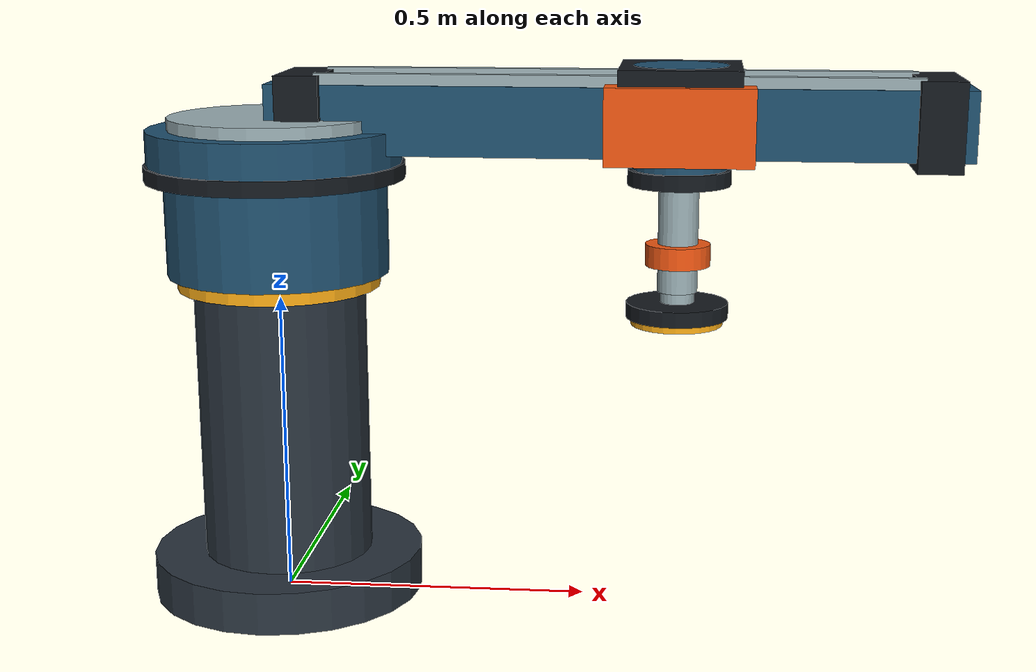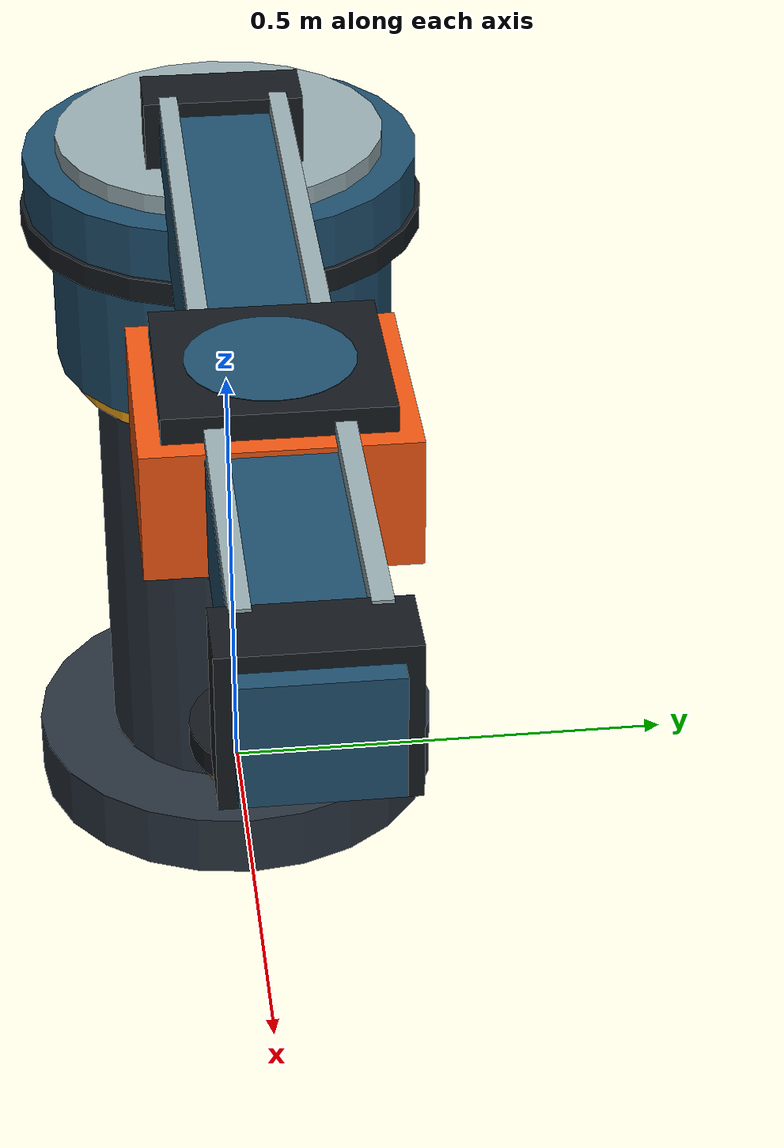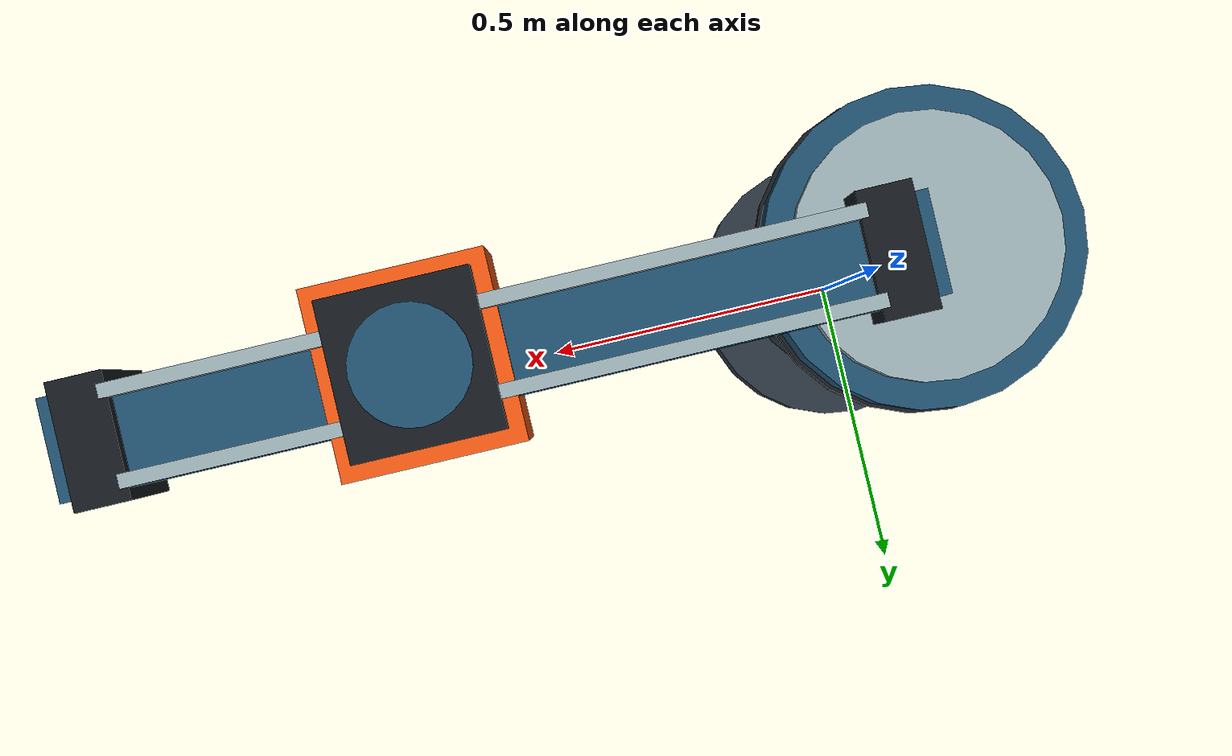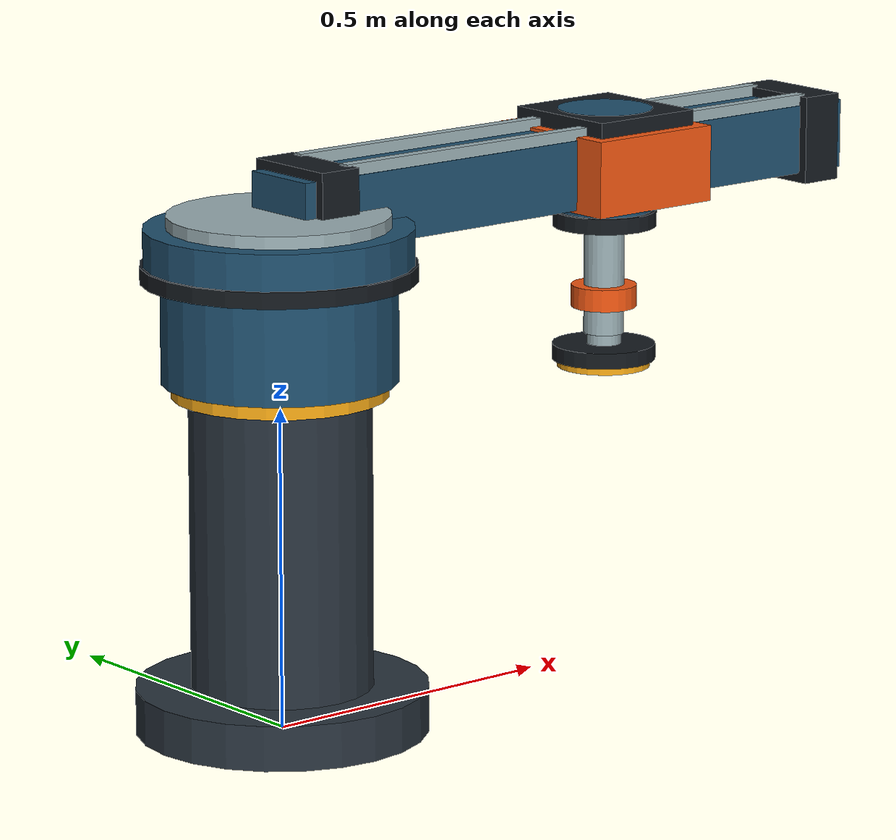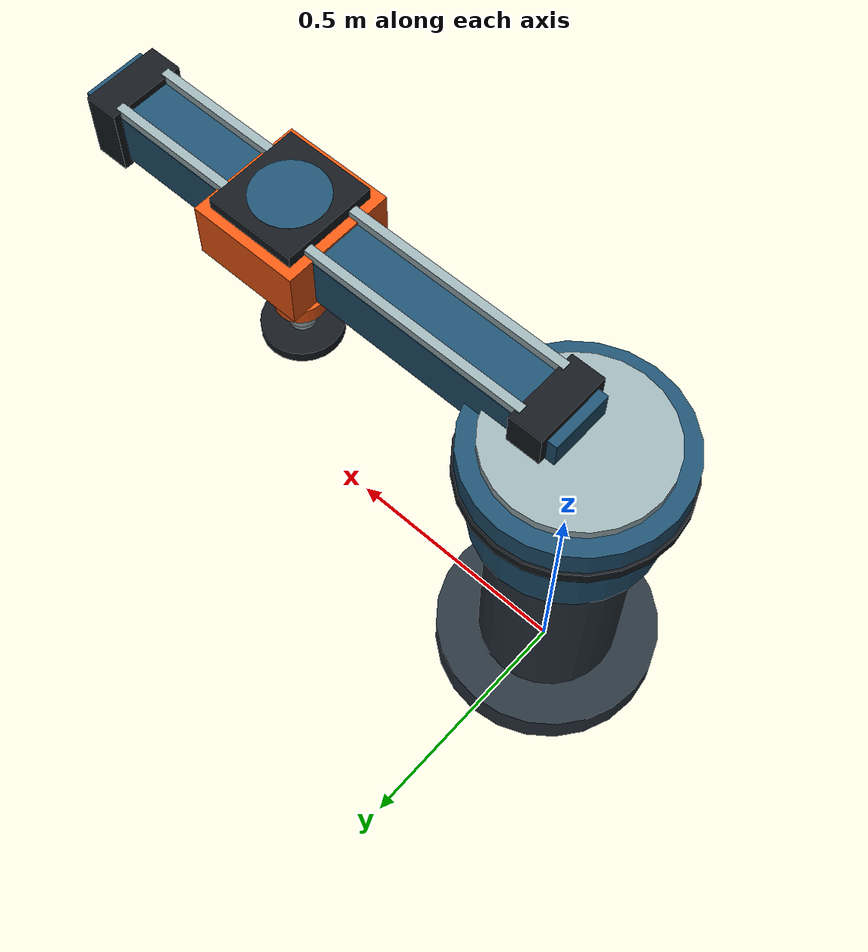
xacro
<?xml version="1.0"?>
<robot xmlns:xacro="http://www.ros.org/wiki/xacro" name="stoneware_manipulator">
  <xacro:arg
    name="controllers_file"
    default="$(find stoneware_manipulation_test)/config/controllers.yaml"/>
  <xacro:property name="base_height" value="0.70"/>
  <xacro:property name="rail_height" value="0.10"/>
  <xacro:property name="radial_offset" value="0.65"/>
  <xacro:property name="tool_offset" value="0.305"/>

  <material name="base_gray">
    <color rgba="0.16 0.20 0.24 1"/>
  </material>
  <material name="rail_blue">
    <color rgba="0.12 0.31 0.43 1"/>
  </material>
  <material name="carriage_orange">
    <color rgba="0.94 0.34 0.07 1"/>
  </material>
  <material name="tool_black">
    <color rgba="0.08 0.10 0.12 1"/>
  </material>
  <material name="machined_steel">
    <color rgba="0.60 0.68 0.70 1"/>
  </material>
  <material name="safety_yellow">
    <color rgba="0.96 0.66 0.08 1"/>
  </material>

  <link name="world"/>

  <link name="base_link">
    <inertial>
      <origin xyz="0 0 ${base_height / 2}" rpy="0 0 0"/>
      <mass value="12.0"/>
      <inertia
        ixx="${12.0 * (3 * 0.16 ** 2 + base_height ** 2) / 12}"
        ixy="0"
        ixz="0"
        iyy="${12.0 * (3 * 0.16 ** 2 + base_height ** 2) / 12}"
        iyz="0"
        izz="${12.0 * 0.16 ** 2 / 2}"/>
    </inertial>
    <visual name="mounting_foot">
      <origin xyz="0 0 0.035" rpy="0 0 0"/>
      <geometry>
        <cylinder radius="0.225" length="0.07"/>
      </geometry>
      <material name="base_gray"/>
    </visual>
    <visual name="pedestal_shell">
      <origin xyz="0 0 0.30" rpy="0 0 0"/>
      <geometry>
        <cylinder radius="0.14" length="0.48"/>
      </geometry>
      <material name="base_gray"/>
    </visual>
    <visual name="pedestal_trim">
      <origin xyz="0 0 0.54" rpy="0 0 0"/>
      <geometry>
        <cylinder radius="0.165" length="0.035"/>
      </geometry>
      <material name="safety_yellow"/>
    </visual>
    <visual name="shoulder_support">
      <origin xyz="0 0 0.62" rpy="0 0 0"/>
      <geometry>
        <cylinder radius="0.18" length="0.15"/>
      </geometry>
      <material name="rail_blue"/>
    </visual>
    <collision>
      <origin xyz="0 0 ${base_height / 2}" rpy="0 0 0"/>
      <geometry>
        <cylinder radius="0.16" length="${base_height}"/>
      </geometry>
    </collision>
  </link>

  <link name="turntable_link">
    <inertial>
      <origin xyz="0 0 0.04" rpy="0 0 0"/>
      <mass value="3.0"/>
      <inertia ixx="0.0324" ixy="0" ixz="0" iyy="0.0324" iyz="0" izz="0.0600"/>
    </inertial>
    <visual name="yaw_housing">
      <origin xyz="0 0 0.04" rpy="0 0 0"/>
      <geometry>
        <cylinder radius="0.205" length="0.08"/>
      </geometry>
      <material name="rail_blue"/>
    </visual>
    <visual name="yaw_joint_band">
      <origin xyz="0 0 0.012" rpy="0 0 0"/>
      <geometry>
        <cylinder radius="0.21" length="0.025"/>
      </geometry>
      <material name="tool_black"/>
    </visual>
    <visual name="yaw_cap">
      <origin xyz="0 0 0.087" rpy="0 0 0"/>
      <geometry>
        <cylinder radius="0.17" length="0.025"/>
      </geometry>
      <material name="machined_steel"/>
    </visual>
    <collision>
      <origin xyz="0 0 0.04" rpy="0 0 0"/>
      <geometry>
        <cylinder radius="0.20" length="0.08"/>
      </geometry>
    </collision>
  </link>

  <link name="rail_link">
    <inertial>
      <origin xyz="0.55 0 0" rpy="0 0 0"/>
      <mass value="1.5"/>
      <inertia
        ixx="0.001225"
        ixy="0"
        ixz="0"
        iyy="0.1518625"
        iyz="0"
        izz="0.1518625"/>
    </inertial>
    <visual name="radial_beam">
      <origin xyz="0.55 0 0" rpy="0 0 0"/>
      <geometry>
        <box size="1.10 0.13 0.11"/>
      </geometry>
      <material name="rail_blue"/>
    </visual>
    <visual name="guide_rail_left">
      <origin xyz="0.55 0.055 0.064" rpy="0 0 0"/>
      <geometry>
        <box size="0.94 0.018 0.018"/>
      </geometry>
      <material name="machined_steel"/>
    </visual>
    <visual name="guide_rail_right">
      <origin xyz="0.55 -0.055 0.064" rpy="0 0 0"/>
      <geometry>
        <box size="0.94 0.018 0.018"/>
      </geometry>
      <material name="machined_steel"/>
    </visual>
    <visual name="rail_end_stop_near">
      <origin xyz="0.055 0 0" rpy="0 0 0"/>
      <geometry>
        <box size="0.07 0.16 0.14"/>
      </geometry>
      <material name="tool_black"/>
    </visual>
    <visual name="rail_end_stop_far">
      <origin xyz="1.045 0 0" rpy="0 0 0"/>
      <geometry>
        <box size="0.07 0.16 0.14"/>
      </geometry>
      <material name="tool_black"/>
    </visual>
  </link>

  <link name="radial_carriage_link">
    <inertial>
      <mass value="1.0"/>
      <inertia ixx="0.003333" ixy="0" ixz="0" iyy="0.003033" iyz="0" izz="0.003667"/>
    </inertial>
    <visual name="saddle_housing">
      <geometry>
        <box size="0.23 0.24 0.12"/>
      </geometry>
      <material name="carriage_orange"/>
    </visual>
    <visual name="saddle_top_cover">
      <origin xyz="0 0 0.072" rpy="0 0 0"/>
      <geometry>
        <box size="0.19 0.20 0.025"/>
      </geometry>
      <material name="tool_black"/>
    </visual>
    <visual name="vertical_axis_housing">
      <origin xyz="0 0 -0.008" rpy="0 0 0"/>
      <geometry>
        <cylinder radius="0.105" length="0.085"/>
      </geometry>
      <material name="safety_yellow"/>
    </visual>
    <collision>
      <geometry>
        <box size="0.14 0.16 0.12"/>
      </geometry>
    </collision>
  </link>

  <link name="lift_link">
    <inertial>
      <mass value="0.8"/>
      <inertia ixx="0.002133" ixy="0" ixz="0" iyy="0.002133" iyz="0" izz="0.000683"/>
    </inertial>
    <visual name="lift_actuator_shell">
      <geometry>
        <cylinder radius="0.075" length="0.17"/>
      </geometry>
      <material name="rail_blue"/>
    </visual>
    <visual name="lift_wiper_band">
      <origin xyz="0 0 -0.09" rpy="0 0 0"/>
      <geometry>
        <cylinder radius="0.082" length="0.025"/>
      </geometry>
      <material name="tool_black"/>
    </visual>
    <visual name="exposed_lift_rod">
      <origin xyz="0 0 -0.18" rpy="0 0 0"/>
      <geometry>
        <cylinder radius="0.032" length="0.19"/>
      </geometry>
      <material name="machined_steel"/>
    </visual>
    <collision>
      <geometry>
        <box size="0.08 0.08 0.16"/>
      </geometry>
    </collision>
  </link>

  <link name="tool_link">
    <inertial>
      <mass value="0.25"/>
      <inertia ixx="0.000209" ixy="0" ixz="0" iyy="0.000209" iyz="0" izz="0.000378"/>
    </inertial>
    <visual name="suction_flange">
      <geometry>
        <cylinder radius="0.082" length="0.025"/>
      </geometry>
      <material name="tool_black"/>
    </visual>
    <visual name="tool_neck">
      <origin xyz="0 0 0.048" rpy="0 0 0"/>
      <geometry>
        <cylinder radius="0.027" length="0.075"/>
      </geometry>
      <material name="machined_steel"/>
    </visual>
    <visual name="tool_actuator_cap">
      <origin xyz="0 0 0.09" rpy="0 0 0"/>
      <geometry>
        <cylinder radius="0.052" length="0.035"/>
      </geometry>
      <material name="carriage_orange"/>
    </visual>
    <visual name="suction_lip">
      <origin xyz="0 0 -0.018" rpy="0 0 0"/>
      <geometry>
        <cylinder radius="0.074" length="0.012"/>
      </geometry>
      <material name="safety_yellow"/>
    </visual>
    <collision>
      <geometry>
        <cylinder radius="0.055" length="0.03"/>
      </geometry>
    </collision>
  </link>

  <joint name="world_fixed_joint" type="fixed">
    <parent link="world"/>
    <child link="base_link"/>
    <origin xyz="0 0 0" rpy="0 0 0"/>
  </joint>

  <joint name="yaw_joint" type="revolute">
    <parent link="base_link"/>
    <child link="turntable_link"/>
    <origin xyz="0 0 ${base_height}" rpy="0 0 0"/>
    <axis xyz="0 0 1"/>
    <limit lower="-3.14159" upper="3.14159" effort="30" velocity="1.2"/>
  </joint>

  <joint name="rail_fixed_joint" type="fixed">
    <parent link="turntable_link"/>
    <child link="rail_link"/>
    <origin xyz="0 0 ${rail_height}" rpy="0 0 0"/>
  </joint>

  <joint name="radial_joint" type="prismatic">
    <parent link="rail_link"/>
    <child link="radial_carriage_link"/>
    <origin xyz="${radial_offset} 0 0" rpy="0 0 0"/>
    <axis xyz="1 0 0"/>
    <limit lower="-0.35" upper="0.35" effort="150" velocity="0.40"/>
  </joint>

  <joint name="lift_joint" type="prismatic">
    <parent link="radial_carriage_link"/>
    <child link="lift_link"/>
    <origin xyz="0 0 0" rpy="0 0 0"/>
    <axis xyz="0 0 1"/>
    <limit lower="-0.165" upper="0.435" effort="120" velocity="0.25"/>
  </joint>

  <joint name="tool_fixed_joint" type="fixed">
    <parent link="lift_link"/>
    <child link="tool_link"/>
    <origin xyz="0 0 -${tool_offset}" rpy="0 0 0"/>
  </joint>

  <ros2_control name="GazeboSimSystem" type="system">
    <hardware>
      <plugin>gz_ros2_control/GazeboSimSystem</plugin>
    </hardware>
    <joint name="yaw_joint">
      <command_interface name="position"/>
      <state_interface name="position"/>
      <state_interface name="velocity"/>
    </joint>
    <joint name="radial_joint">
      <command_interface name="position"/>
      <state_interface name="position"/>
      <state_interface name="velocity"/>
    </joint>
    <joint name="lift_joint">
      <command_interface name="position"/>
      <state_interface name="position"/>
      <state_interface name="velocity"/>
    </joint>
  </ros2_control>

  <gazebo>
    <plugin
      filename="gz-sim-pose-publisher-system"
      name="gz::sim::systems::PosePublisher">
      <publish_link_pose>true</publish_link_pose>
      <publish_nested_model_pose>false</publish_nested_model_pose>
      <use_pose_vector_msg>true</use_pose_vector_msg>
    </plugin>
    <plugin
      filename="libgz_ros2_control-system.so"
      name="gz_ros2_control::GazeboSimROS2ControlPlugin">
      <parameters>$(arg controllers_file)</parameters>
    </plugin>
    <plugin
      filename="gz-sim-detachable-joint-system"
      name="gz::sim::systems::DetachableJoint">
      <parent_link>lift_link</parent_link>
      <child_model>workpiece</child_model>
      <child_link>cylinder_link</child_link>
      <detach_topic>/workpiece/detach</detach_topic>
      <attach_topic>/workpiece/attach</attach_topic>
      <output_topic>/workpiece/state</output_topic>
    </plugin>
  </gazebo>
</robot>
